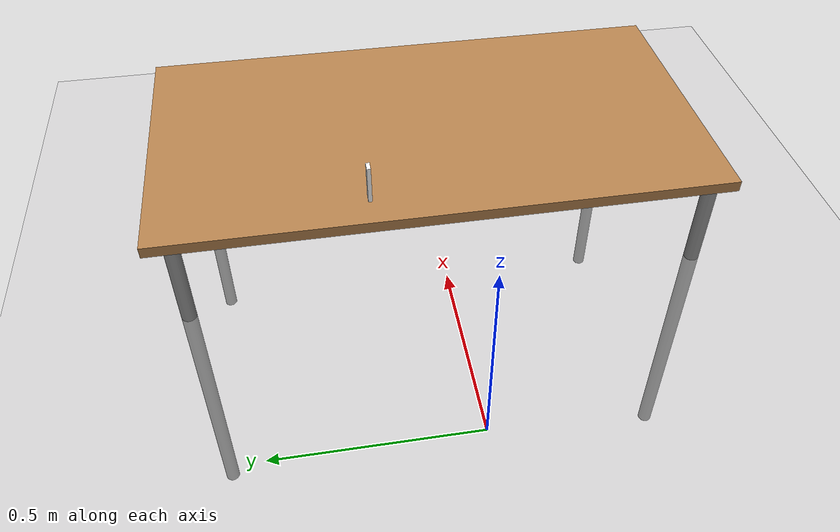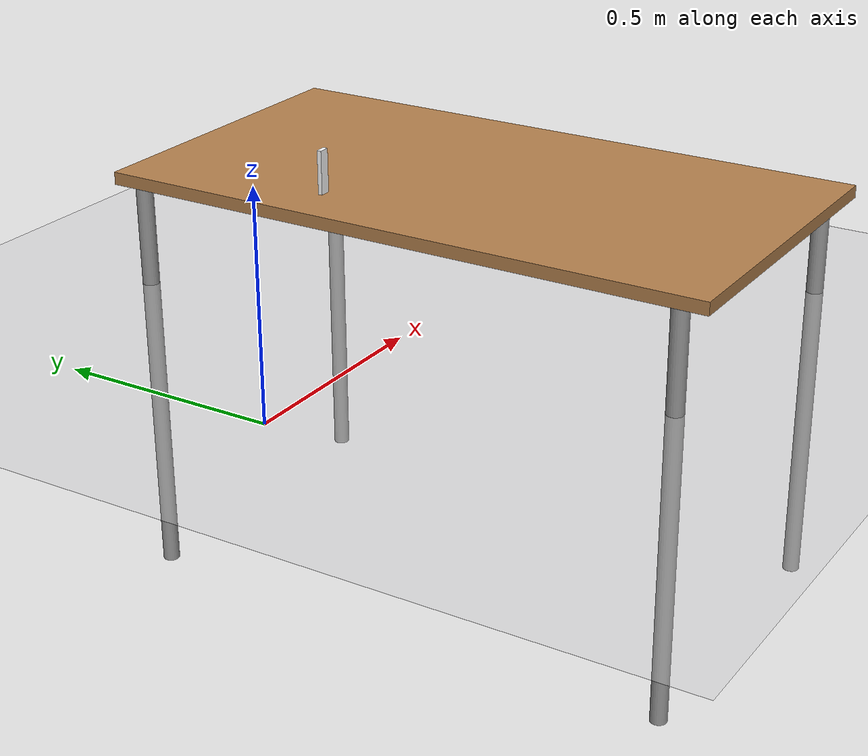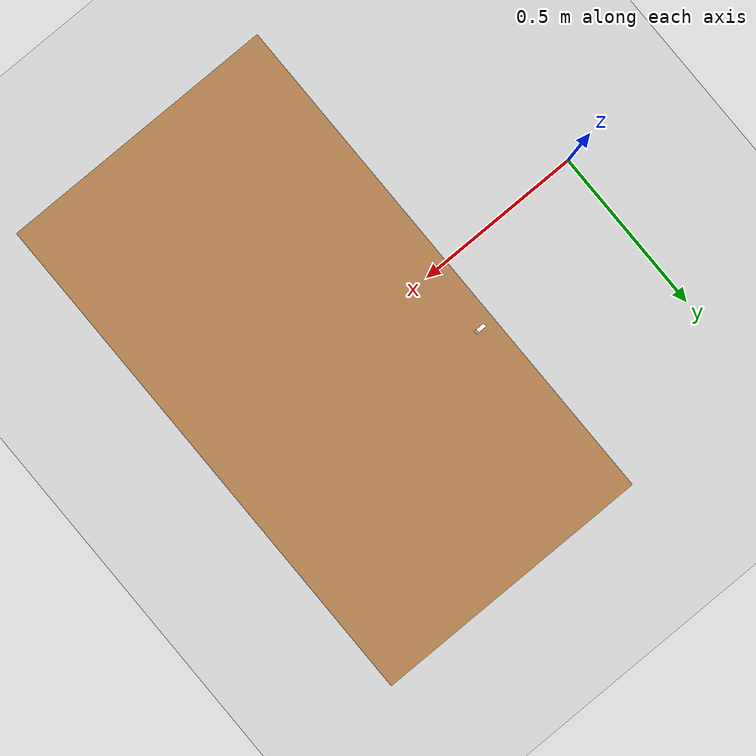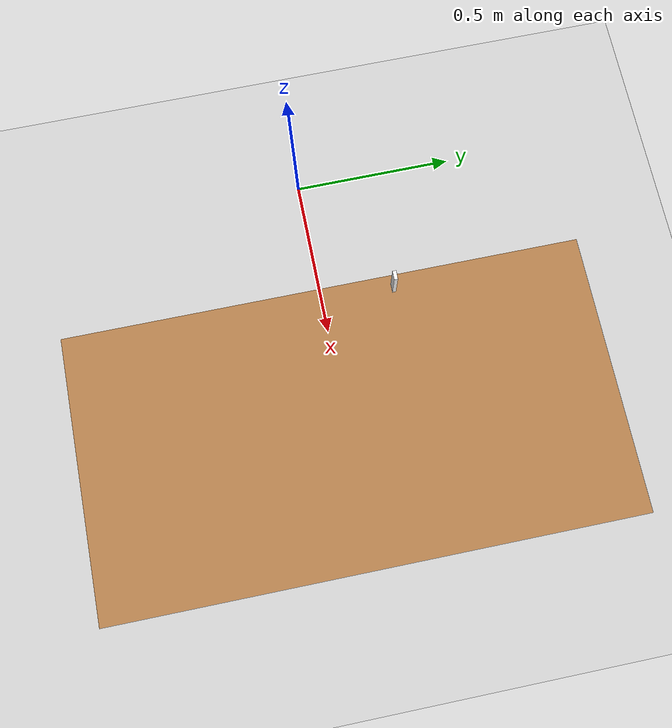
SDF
<?xml version="1.0" ?>
<sdf version="1.4">
  <world name="default">
    <include>
      <uri>model://ground_plane</uri>
    </include>
    <include>
      <uri>model://sun</uri>
    </include>
    <include>
      <uri>model://table</uri>
      <pose>0.85 0 -0.75 0 0 1.5708</pose>
      <static>true</static>
    </include>
    <include>
      <uri>model://stone_10_2_5_1cm</uri>
      <pose>0.5 0.2 0.35 1.5708 1.5708 0</pose>
      <static>false</static>
    </include>
  </world>
</sdf>

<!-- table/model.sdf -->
<sdf version="1.5">
  <model name="table">
    <static>true</static>
    <link name="link">
      <collision name="surface">
        <pose>0 0 1.0 0 0 0</pose>
        <geometry>
          <box>
            <size>1.5 0.8 0.03</size>
          </box>
        </geometry>
        <surface>
          <friction>
            <ode>
              <mu>0.6</mu>
              <mu2>0.6</mu2>
            </ode>
          </friction>
        </surface>
      </collision>
      <visual name="visual1">
        <pose>0 0 1.0 0 0 0</pose>
        <geometry>
          <box>
            <size>1.5 0.8 0.03</size>
          </box>
        </geometry>
        <material>
          <script>
            <uri>model://media/materials/scripts/gazebo.material</uri>
            <name>Gazebo/Wood</name>
          </script>
        </material>
      </visual>
      <collision name="front_left_leg">
        <pose>0.68 0.38 0.5 0 0 0</pose>
        <geometry>
          <cylinder>
            <radius>0.02</radius>
            <length>1.0</length>
          </cylinder>
        </geometry>
      </collision>
      <visual name="front_left_leg">
        <pose>0.68 0.38 0.5 0 0 0</pose>
        <geometry>
          <cylinder>
            <radius>0.02</radius>
            <length>1.0</length>
          </cylinder>
        </geometry>
        <material>
          <script>
            <uri>model://media/materials/scripts/gazebo.material</uri>
            <name>Gazebo/Grey</name>
          </script>
        </material>
      </visual>
      <collision name="front_right_leg">
        <pose>0.68 -0.38 0.5 0 0 0</pose>
        <geometry>
          <cylinder>
            <radius>0.02</radius>
            <length>1.0</length>
          </cylinder>
        </geometry>
      </collision>
      <visual name="front_right_leg">
        <pose>0.68 -0.38 0.5 0 0 0</pose>
        <geometry>
          <cylinder>
            <radius>0.02</radius>
            <length>1.0</length>
          </cylinder>
        </geometry>
        <material>
          <script>
            <uri>model://media/materials/scripts/gazebo.material</uri>
            <name>Gazebo/Grey</name>
          </script>
        </material>
      </visual>
      <collision name="back_right_leg">
        <pose>-0.68 -0.38 0.5 0 0 0</pose>
        <geometry>
          <cylinder>
            <radius>0.02</radius>
            <length>1.0</length>
          </cylinder>
        </geometry>
      </collision>
      <visual name="back_right_leg">
        <pose>-0.68 -0.38 0.5 0 0 0</pose>
        <geometry>
          <cylinder>
            <radius>0.02</radius>
            <length>1.0</length>
          </cylinder>
        </geometry>
        <material>
          <script>
            <uri>model://media/materials/scripts/gazebo.material</uri>
            <name>Gazebo/Grey</name>
          </script>
        </material>
      </visual>
      <collision name="back_left_leg">
        <pose>-0.68 0.38 0.5 0 0 0</pose>
        <geometry>
          <cylinder>
            <radius>0.02</radius>
            <length>1.0</length>
          </cylinder>
        </geometry>
      </collision>
      <visual name="back_left_leg">
        <pose>-0.68 0.38 0.5 0 0 0</pose>
        <geometry>
          <cylinder>
            <radius>0.02</radius>
            <length>1.0</length>
          </cylinder>
        </geometry>
        <material>
          <script>
            <uri>model://media/materials/scripts/gazebo.material</uri>
            <name>Gazebo/Grey</name>
          </script>
        </material>
      </visual>
    </link>
  </model>
</sdf>

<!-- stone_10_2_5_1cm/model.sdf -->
<sdf version="1.5">
  <model name="stone_10_2_5_1cm">
    <link name="link">
      <pose>0 0 0.005 0 0 0</pose>
      <inertial>
        <mass>0.0628</mass>
        <inertia>
          <ixx>3.794166666666667e-06</ixx>
          <ixy>0</ixy>
          <ixz>0</ixz>
          <iyy>5.285666666666667e-05</iyy>
          <iyz>0</iyz>
          <izz>5.560416666666667e-05</izz>
        </inertia>
      </inertial>

      <collision name="collision">
        <geometry>
          <box>
            <size>0.1 0.025 0.01</size>
          </box>
        </geometry>
        <surface>
          <contact>
            <poissons_ratio>0.15</poissons_ratio>
            <elastic_modulus>8.0e+10</elastic_modulus>
            <ode>
              <kp>100000</kp>
              <kd>100</kd>
              <max_vel>100.0</max_vel>
              <min_depth>0.001</min_depth>
            </ode>
          </contact>
          <friction>
            <torsional>
              <coefficient>1.0</coefficient>
              <use_patch_radius>0</use_patch_radius>
              <surface_radius>0.01</surface_radius>
            </torsional>
          </friction>
        </surface>
      </collision>

      <visual name="visual">
        <geometry>
          <box>
            <size>0.1 0.025 0.01</size>
          </box>
        </geometry>
        <material><diffuse>1 1 1 1</diffuse><specular>0.1 0.1 0.1 1</specular></material>
      </visual>

    </link>
  </model>
</sdf>
